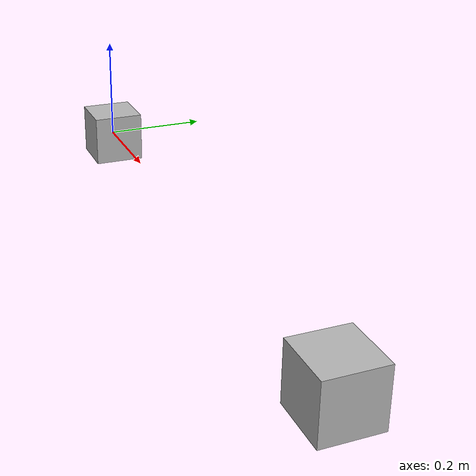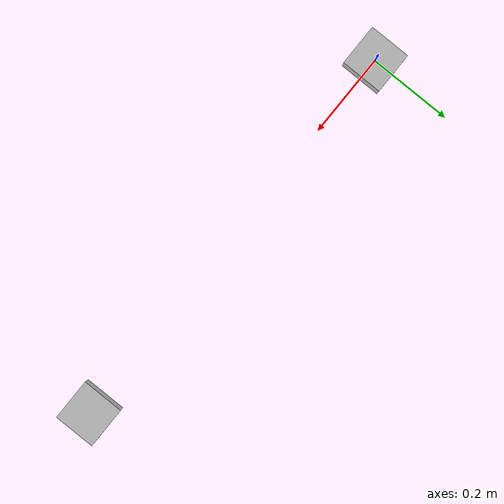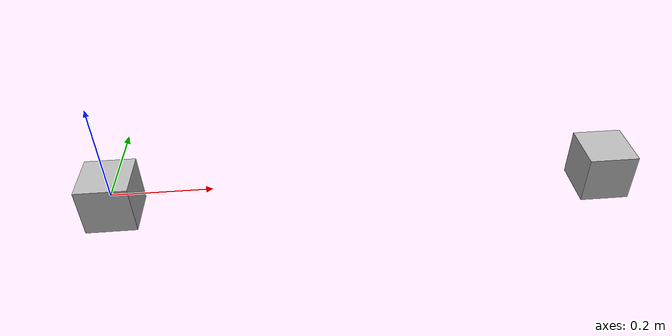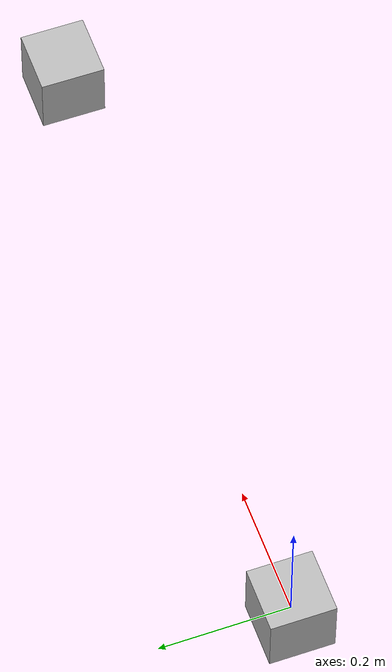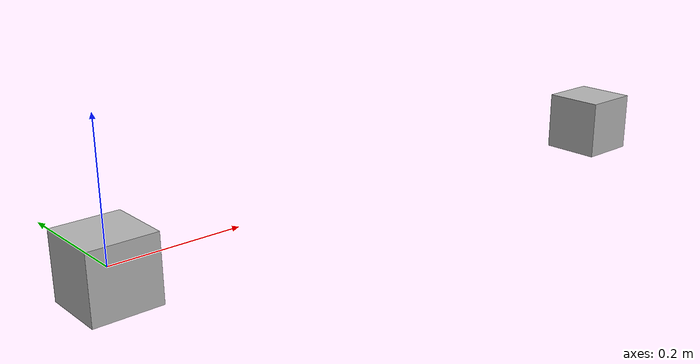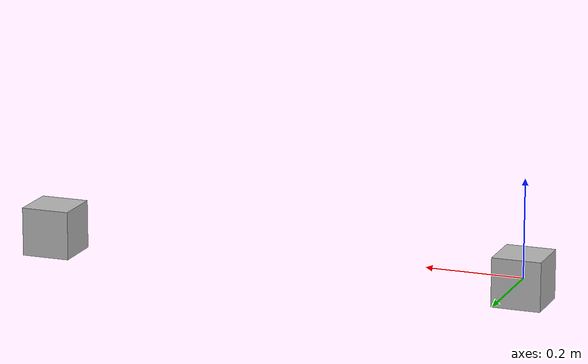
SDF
<?xml version='1.0'?>
<sdf version='1.6'>
		<model name="P1">
			<self_collide>true</self_collide>
			<pose>0.0 0.0 0.0 0.0 0.0 0.0</pose>
			<!-- Start of parts of the pmodel P1 -->
			<!-- End of parts of the pmodel P1 -->

			<!-- Start of links of the pmodel P1 -->
			<!-- link full name is P1::L1::0 -->
			<link name="1-L1">
					<pose>0.0 0.0 0.0 0.0 0.0 0.0</pose>
					<inertial>
						<pose>0.0 0.0 0.0 0.0 0.0 0.0</pose>
						<inertia>
							<ixx>1.0</ixx>
							<ixy>0.0</ixy>
							<ixz>0.0</ixz>
							<iyy>1.0</iyy>
							<iyz>0.0</iyz>
							<izz>1.0</izz>
						</inertia>
						<mass>1.0</mass>
					</inertial>
					<!-- body full name is P1::L1::0::B -->
					<collision name="1--B">
						<laser_retro>0.0</laser_retro>
						<pose>0.0 0.0 0.0 0.0 0.0 0.0</pose>
						<geometry>
							<box>
								<size>0.10000000149011612 0.10000000149011612 0.10000000149011612</size>
							</box>
						</geometry>
						<surface>
							<bounce>
								<restitution_coefficient>0.0</restitution_coefficient>
								<threshold>100000.0</threshold>
							</bounce>
							<friction>
								<ode>
									<mu>1.0</mu>
									<mu2>1.0</mu2>
									<fdir1>0.0 0.0 0.0</fdir1>
									<slip1>0.0</slip1>
									<slip2>0.0</slip2>
								</ode>
								<torsional>
									<coefficient>1.0</coefficient>
									<surface_radius>0.0</surface_radius>
								</torsional>
							</friction>
						</surface>
					</collision>
					<visual name="1--B">
						<laser_retro>0.0</laser_retro>
						<pose>0.0 0.0 0.0 0.0 0.0 0.0</pose>
						<geometry>
							<box>
								<size>0.10000000149011612 0.10000000149011612 0.10000000149011612</size>
							</box>
						</geometry>
						<surface>
							<bounce>
								<restitution_coefficient>0.0</restitution_coefficient>
								<threshold>100000.0</threshold>
							</bounce>
							<friction>
								<ode>
									<mu>1.0</mu>
									<mu2>1.0</mu2>
									<fdir1>0.0 0.0 0.0</fdir1>
									<slip1>0.0</slip1>
									<slip2>0.0</slip2>
								</ode>
								<torsional>
									<coefficient>1.0</coefficient>
									<surface_radius>0.0</surface_radius>
								</torsional>
							</friction>
						</surface>
					</visual>
			</link>
			<!-- link full name is P1::L1::1 -->
			<link name="2-L1">
					<pose>1.0 0.0 0.0 0.0 0.0 0.0</pose>
					<inertial>
						<pose>0.0 0.0 0.0 0.0 0.0 0.0</pose>
						<inertia>
							<ixx>1.0</ixx>
							<ixy>0.0</ixy>
							<ixz>0.0</ixz>
							<iyy>1.0</iyy>
							<iyz>0.0</iyz>
							<izz>1.0</izz>
						</inertia>
						<mass>1.0</mass>
					</inertial>
					<!-- body full name is P1::L1::1::B -->
					<collision name="2--B">
						<laser_retro>0.0</laser_retro>
						<pose>0.0 0.0 0.0 0.0 0.0 0.0</pose>
						<geometry>
							<box>
								<size>0.10000000149011612 0.10000000149011612 0.10000000149011612</size>
							</box>
						</geometry>
						<surface>
							<bounce>
								<restitution_coefficient>0.0</restitution_coefficient>
								<threshold>100000.0</threshold>
							</bounce>
							<friction>
								<ode>
									<mu>1.0</mu>
									<mu2>1.0</mu2>
									<fdir1>0.0 0.0 0.0</fdir1>
									<slip1>0.0</slip1>
									<slip2>0.0</slip2>
								</ode>
								<torsional>
									<coefficient>1.0</coefficient>
									<surface_radius>0.0</surface_radius>
								</torsional>
							</friction>
						</surface>
					</collision>
					<visual name="2--B">
						<laser_retro>0.0</laser_retro>
						<pose>0.0 0.0 0.0 0.0 0.0 0.0</pose>
						<geometry>
							<box>
								<size>0.10000000149011612 0.10000000149011612 0.10000000149011612</size>
							</box>
						</geometry>
						<surface>
							<bounce>
								<restitution_coefficient>0.0</restitution_coefficient>
								<threshold>100000.0</threshold>
							</bounce>
							<friction>
								<ode>
									<mu>1.0</mu>
									<mu2>1.0</mu2>
									<fdir1>0.0 0.0 0.0</fdir1>
									<slip1>0.0</slip1>
									<slip2>0.0</slip2>
								</ode>
								<torsional>
									<coefficient>1.0</coefficient>
									<surface_radius>0.0</surface_radius>
								</torsional>
							</friction>
						</surface>
					</visual>
			</link>
			<!-- End of links of the pmodel P1 -->

			<!-- Start of joints of the pmodel P1 -->
			<!-- End of joints of the pmodel P1 -->

			<!-- Start of fixed connections of the pmodel P1 -->
			<!-- End of fixed connections of the pmodel P1 -->
		</model>
</sdf>
